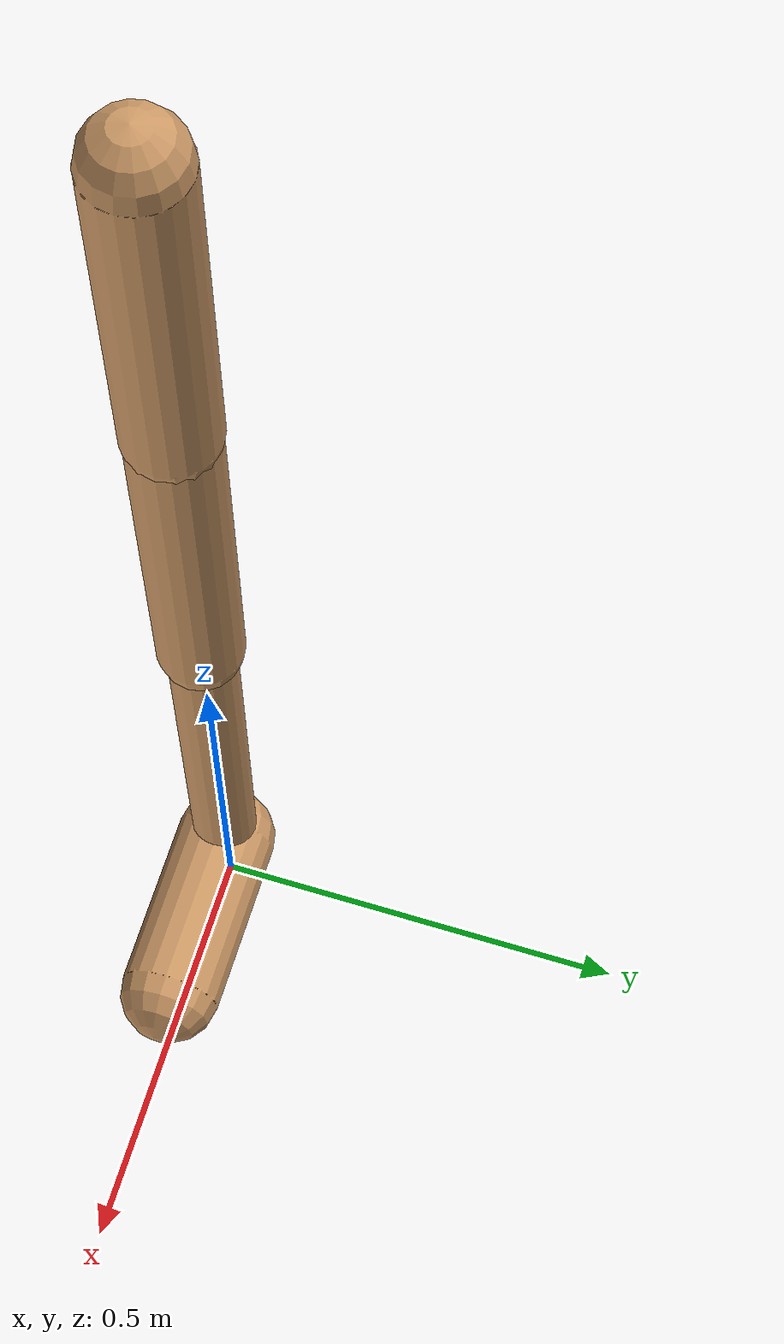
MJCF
<mujoco model="walker2d">
  <compiler angle="degree" coordinate="global" inertiafromgeom="true" />
  <default>
    <joint armature="0.01" damping=".1" limited="true" />
    <geom conaffinity="0" condim="3" contype="1" density="1000" friction="0.8 .1 .1" rgba="0.8 0.6 .4 1" />
  </default>
  <option integrator="RK4" timestep="0.002" />
  <worldbody>

    <body name="torso" pos="0 0 -0.037566306678669746">
      <joint armature="0" axis="1 0 0" damping="0" limited="false" name="ignorex" pos="0 0 0" stiffness="0" type="slide" />
      <joint armature="0" axis="0 0 1" damping="0" limited="false" name="ignorez" pos="0 0 0" ref="1.25" stiffness="0" type="slide" />
      <joint armature="0" axis="0 1 0" damping="0" limited="false" name="ignorey" pos="0 0 0" stiffness="0" type="hinge" />
      <geom fromto="0 0 1.45 0 0 1.05" name="torso_geom" size="0.05104034418225946" type="capsule" />
      <body name="thigh">
        <joint axis="0 -1 0" name="thigh_joint" pos="0 0 1.05" range="-150 0" type="hinge" />
        <geom fromto="0.0 0.0 1.05 0.0 0.0 0.6177945663214751" name="thigh_geom" size="0.048783073823525695" type="capsule" />
        <body name="leg" pos="0.0 0.0 0.017794566321475136">
          <joint axis="0 -1 0" name="leg_joint" pos="0 0 0.6" range="-150 0" type="hinge" />
          <geom fromto="0.0 0.0 0.6 0.0 0.0 0.11977174035719461" name="leg_geom" size="0.03902645905882055" type="capsule" />
          <body name="foot" pos="0.0 0.0 0.019771740357194603">
            <joint axis="0 -1 0" name="foot_joint" pos="0 0 0.1" range="-45 45" type="hinge" />
            <geom fromto="-0.0 0.0 0.1 0.21671332368924287 0.0 0.1" name="foot_geom" size="0.06061749294238005" type="capsule" />
          </body>
        </body>
      </body>

      <body name="thigh_left">
        <joint axis="0 -1 0" name="thigh_left_joint" pos="0 0 1.05" range="-150 0" type="hinge" />
        <geom fromto="0.0 0.0 1.05 0.0 0.0 0.6177945663214751" name="thigh_left_geom" rgba=".7 .3 .6 1" size="0.048783073823525695" type="capsule" />
        <body name="leg_left" pos="0.0 0.0 0.017794566321475136">
          <joint axis="0 -1 0" name="leg_left_joint" pos="0 0 0.6" range="-150 0" type="hinge" />
          <geom fromto="0.0 0.0 0.6 0.0 0.0 0.11977174035719461" name="leg_left_geom" rgba=".7 .3 .6 1" size="0.03902645905882055" type="capsule" />
          <body name="foot_left" pos="0.0 0.0 0.019771740357194603">
            <joint axis="0 -1 0" name="foot_left_joint" pos="0 0 0.1" range="-45 45" type="hinge" />
            <geom fromto="-0.0 0.0 0.1 0.21671332368924287 0.0 0.1" name="foot_left_geom" rgba=".7 .3 .6 1" size="0.06061749294238005" type="capsule" />
          </body>
        </body>
      </body>
    </body>
  </worldbody>
  <actuator>

    <motor ctrllimited="true" ctrlrange="-1.0 1.0" gear="100" joint="thigh_joint" />
    <motor ctrllimited="true" ctrlrange="-1.0 1.0" gear="100" joint="leg_joint" />
    <motor ctrllimited="true" ctrlrange="-1.0 1.0" gear="100" joint="foot_joint" />
    <motor ctrllimited="true" ctrlrange="-1.0 1.0" gear="100" joint="thigh_left_joint" />
    <motor ctrllimited="true" ctrlrange="-1.0 1.0" gear="100" joint="leg_left_joint" />
    <motor ctrllimited="true" ctrlrange="-1.0 1.0" gear="100" joint="foot_left_joint" />

  </actuator>
</mujoco>
